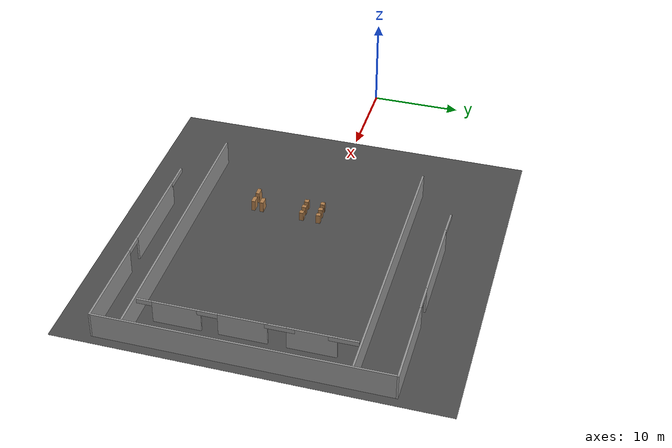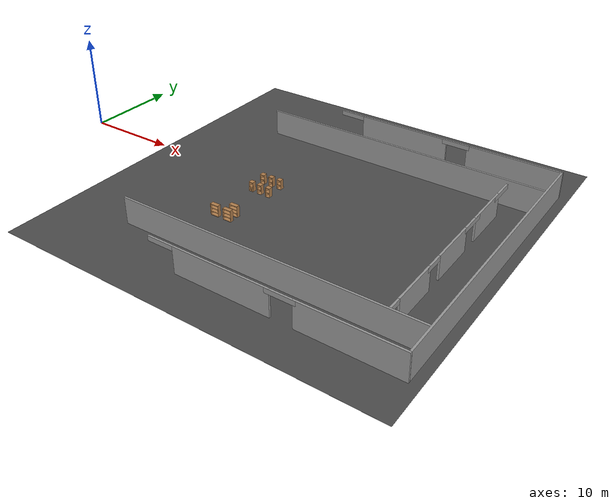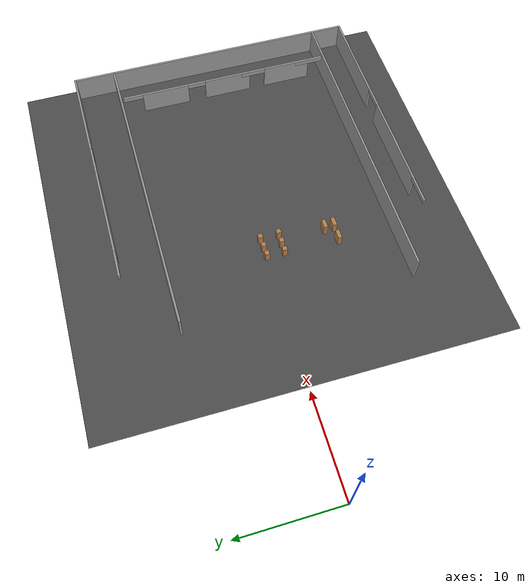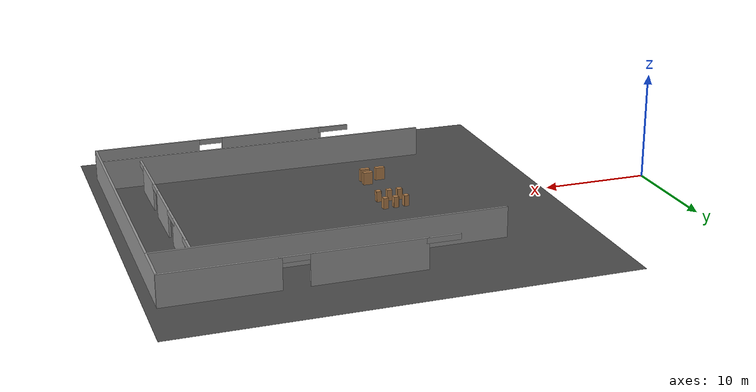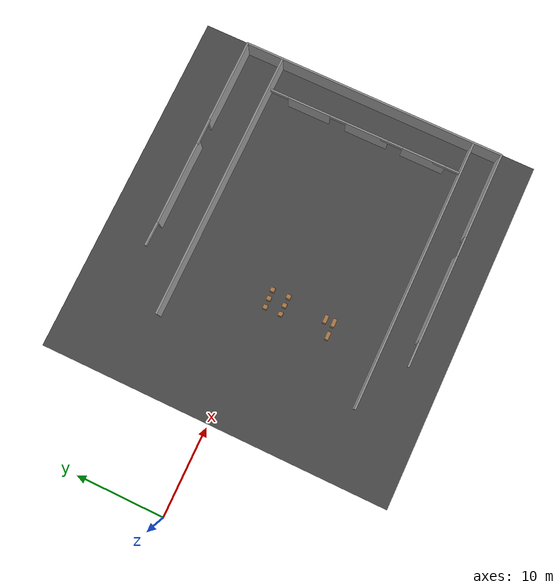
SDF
<sdf version="1.6">
 <world name="default">
  <model name="bookshelf_0">
   <static>1</static>
   <link name="link">
    <inertial><mass>1</mass></inertial>
    <collision name="back">
     <pose>0 0.005 0.6 0 -0 0</pose>
     <geometry><box><size>0.9 0.01 1.2</size></box></geometry>
    </collision>
    <visual name="visual1">
     <pose>0 0.005 0.6 0 -0 0</pose>
     <geometry><box><size>0.9 0.01 1.2</size></box></geometry>
     <material>
      <script><uri>file://media/materials/scripts/gazebo.material</uri><name>Gazebo/Wood</name></script>
     </material>
    </visual>
    <collision name="left_side">
     <pose>0.45 -0.195 0.6 0 -0 0</pose>
     <geometry><box><size>0.02 0.4 1.2</size></box></geometry>
    </collision>
    <visual name="visual2">
     <pose>0.45 -0.195 0.6 0 -0 0</pose>
     <geometry><box><size>0.02 0.4 1.2</size></box></geometry>
     <material>
      <script><uri>file://media/materials/scripts/gazebo.material</uri><name>Gazebo/Wood</name></script>
     </material>
    </visual>
    <collision name="right_side">
     <pose>-0.45 -0.195 0.6 0 -0 0</pose>
     <geometry><box><size>0.02 0.4 1.2</size></box></geometry>
    </collision>
    <visual name="visual3">
     <pose>-0.45 -0.195 0.6 0 -0 0</pose>
     <geometry><box><size>0.02 0.4 1.2</size></box></geometry>
     <material>
      <script><uri>file://media/materials/scripts/gazebo.material</uri><name>Gazebo/Wood</name></script>
     </material>
    </visual>
    <collision name="bottom">
     <pose>0 -0.195 0.03 0 -0 0</pose>
     <geometry><box><size>0.88 0.4 0.06</size></box></geometry>
    </collision>
    <visual name="visual4">
     <pose>0 -0.195 0.03 0 -0 0</pose>
     <geometry><box><size>0.88 0.4 0.06</size></box></geometry>
     <material>
      <script><uri>file://media/materials/scripts/gazebo.material</uri><name>Gazebo/Wood</name></script>
     </material>
    </visual>
    <collision name="top">
     <pose>0 -0.195 1.19 0 -0 0</pose>
     <geometry><box><size>0.88 0.4 0.02</size></box></geometry>
    </collision>
    <visual name="visual5">
     <pose>0 -0.195 1.19 0 -0 0</pose>
     <geometry><box><size>0.88 0.4 0.02</size></box></geometry>
     <material>
      <script><uri>file://media/materials/scripts/gazebo.material</uri><name>Gazebo/Wood</name></script>
     </material>
    </visual>
    <collision name="low_shelf">
     <pose>0 -0.195 0.43 0 -0 0</pose>
     <geometry><box><size>0.88 0.4 0.02</size></box></geometry>
    </collision>
    <visual name="visual6">
     <pose>0 -0.195 0.43 0 -0 0</pose>
     <geometry><box><size>0.88 0.4 0.02</size></box></geometry>
     <material>
      <script><uri>file://media/materials/scripts/gazebo.material</uri><name>Gazebo/Wood</name></script>
     </material>
    </visual>
    <collision name="high_shelf">
     <pose>0 -0.195 0.8 0 -0 0</pose>
     <geometry><box><size>0.88 0.4 0.02</size></box></geometry>
    </collision>
    <visual name="visual7">
     <pose>0 -0.195 0.8 0 -0 0</pose>
     <geometry><box><size>0.88 0.4 0.02</size></box></geometry>
     <material>
      <script><uri>file://media/materials/scripts/gazebo.material</uri><name>Gazebo/Wood</name></script>
     </material>
    </visual>
   </link>
   <pose>24 -7.29732 0 0 -0 0</pose>
  </model>
  <model name="bookshelf_4">
   <static>1</static>
   <link name="link">
    <inertial><mass>1</mass></inertial>
    <collision name="back">
     <pose>0 0.005 0.6 0 -0 0</pose>
     <geometry><box><size>0.9 0.01 1.2</size></box></geometry>
    </collision>
    <visual name="visual1">
     <pose>0 0.005 0.6 0 -0 0</pose>
     <geometry><box><size>0.9 0.01 1.2</size></box></geometry>
     <material>
      <script><uri>file://media/materials/scripts/gazebo.material</uri><name>Gazebo/Wood</name></script>
     </material>
    </visual>
    <collision name="left_side">
     <pose>0.45 -0.195 0.6 0 -0 0</pose>
     <geometry><box><size>0.02 0.4 1.2</size></box></geometry>
    </collision>
    <visual name="visual2">
     <pose>0.45 -0.195 0.6 0 -0 0</pose>
     <geometry><box><size>0.02 0.4 1.2</size></box></geometry>
     <material>
      <script><uri>file://media/materials/scripts/gazebo.material</uri><name>Gazebo/Wood</name></script>
     </material>
    </visual>
    <collision name="right_side">
     <pose>-0.45 -0.195 0.6 0 -0 0</pose>
     <geometry><box><size>0.02 0.4 1.2</size></box></geometry>
    </collision>
    <visual name="visual3">
     <pose>-0.45 -0.195 0.6 0 -0 0</pose>
     <geometry><box><size>0.02 0.4 1.2</size></box></geometry>
     <material>
      <script><uri>file://media/materials/scripts/gazebo.material</uri><name>Gazebo/Wood</name></script>
     </material>
    </visual>
    <collision name="bottom">
     <pose>0 -0.195 0.03 0 -0 0</pose>
     <geometry><box><size>0.88 0.4 0.06</size></box></geometry>
    </collision>
    <visual name="visual4">
     <pose>0 -0.195 0.03 0 -0 0</pose>
     <geometry><box><size>0.88 0.4 0.06</size></box></geometry>
     <material>
      <script><uri>file://media/materials/scripts/gazebo.material</uri><name>Gazebo/Wood</name></script>
     </material>
    </visual>
    <collision name="top">
     <pose>0 -0.195 1.19 0 -0 0</pose>
     <geometry><box><size>0.88 0.4 0.02</size></box></geometry>
    </collision>
    <visual name="visual5">
     <pose>0 -0.195 1.19 0 -0 0</pose>
     <geometry><box><size>0.88 0.4 0.02</size></box></geometry>
     <material>
      <script><uri>file://media/materials/scripts/gazebo.material</uri><name>Gazebo/Wood</name></script>
     </material>
    </visual>
    <collision name="low_shelf">
     <pose>0 -0.195 0.43 0 -0 0</pose>
     <geometry><box><size>0.88 0.4 0.02</size></box></geometry>
    </collision>
    <visual name="visual6">
     <pose>0 -0.195 0.43 0 -0 0</pose>
     <geometry><box><size>0.88 0.4 0.02</size></box></geometry>
     <material>
      <script><uri>file://media/materials/scripts/gazebo.material</uri><name>Gazebo/Wood</name></script>
     </material>
    </visual>
    <collision name="high_shelf">
     <pose>0 -0.195 0.8 0 -0 0</pose>
     <geometry><box><size>0.88 0.4 0.02</size></box></geometry>
    </collision>
    <visual name="visual7">
     <pose>0 -0.195 0.8 0 -0 0</pose>
     <geometry><box><size>0.88 0.4 0.02</size></box></geometry>
     <material>
      <script><uri>file://media/materials/scripts/gazebo.material</uri><name>Gazebo/Wood</name></script>
     </material>
    </visual>
   </link>
   <pose>25.4994 -7.31169 0 0 -0 0</pose>
  </model>
  <model name="bookshelf_7">
   <static>1</static>
   <link name="link">
    <inertial><mass>1</mass></inertial>
    <collision name="back">
     <pose>0 0.005 0.6 0 -0 0</pose>
     <geometry><box><size>0.9 0.01 1.2</size></box></geometry>
    </collision>
    <visual name="visual1">
     <pose>0 0.005 0.6 0 -0 0</pose>
     <geometry><box><size>0.9 0.01 1.2</size></box></geometry>
     <material>
      <script><uri>file://media/materials/scripts/gazebo.material</uri><name>Gazebo/Wood</name></script>
     </material>
    </visual>
    <collision name="left_side">
     <pose>0.45 -0.195 0.6 0 -0 0</pose>
     <geometry><box><size>0.02 0.4 1.2</size></box></geometry>
    </collision>
    <visual name="visual2">
     <pose>0.45 -0.195 0.6 0 -0 0</pose>
     <geometry><box><size>0.02 0.4 1.2</size></box></geometry>
     <material>
      <script><uri>file://media/materials/scripts/gazebo.material</uri><name>Gazebo/Wood</name></script>
     </material>
    </visual>
    <collision name="right_side">
     <pose>-0.45 -0.195 0.6 0 -0 0</pose>
     <geometry><box><size>0.02 0.4 1.2</size></box></geometry>
    </collision>
    <visual name="visual3">
     <pose>-0.45 -0.195 0.6 0 -0 0</pose>
     <geometry><box><size>0.02 0.4 1.2</size></box></geometry>
     <material>
      <script><uri>file://media/materials/scripts/gazebo.material</uri><name>Gazebo/Wood</name></script>
     </material>
    </visual>
    <collision name="bottom">
     <pose>0 -0.195 0.03 0 -0 0</pose>
     <geometry><box><size>0.88 0.4 0.06</size></box></geometry>
    </collision>
    <visual name="visual4">
     <pose>0 -0.195 0.03 0 -0 0</pose>
     <geometry><box><size>0.88 0.4 0.06</size></box></geometry>
     <material>
      <script><uri>file://media/materials/scripts/gazebo.material</uri><name>Gazebo/Wood</name></script>
     </material>
    </visual>
    <collision name="top">
     <pose>0 -0.195 1.19 0 -0 0</pose>
     <geometry><box><size>0.88 0.4 0.02</size></box></geometry>
    </collision>
    <visual name="visual5">
     <pose>0 -0.195 1.19 0 -0 0</pose>
     <geometry><box><size>0.88 0.4 0.02</size></box></geometry>
     <material>
      <script><uri>file://media/materials/scripts/gazebo.material</uri><name>Gazebo/Wood</name></script>
     </material>
    </visual>
    <collision name="low_shelf">
     <pose>0 -0.195 0.43 0 -0 0</pose>
     <geometry><box><size>0.88 0.4 0.02</size></box></geometry>
    </collision>
    <visual name="visual6">
     <pose>0 -0.195 0.43 0 -0 0</pose>
     <geometry><box><size>0.88 0.4 0.02</size></box></geometry>
     <material>
      <script><uri>file://media/materials/scripts/gazebo.material</uri><name>Gazebo/Wood</name></script>
     </material>
    </visual>
    <collision name="high_shelf">
     <pose>0 -0.195 0.8 0 -0 0</pose>
     <geometry><box><size>0.88 0.4 0.02</size></box></geometry>
    </collision>
    <visual name="visual7">
     <pose>0 -0.195 0.8 0 -0 0</pose>
     <geometry><box><size>0.88 0.4 0.02</size></box></geometry>
     <material>
      <script><uri>file://media/materials/scripts/gazebo.material</uri><name>Gazebo/Wood</name></script>
     </material>
    </visual>
   </link>
   <pose>25.5 -6.37044 0 0 -0 0</pose>
  </model>
  <model name="cabinet">
   <static>1</static>
   <link name="cabinet_bottom_plate">
    <inertial>
     <pose>0 0 -1 0 -0 0</pose>
     <inertia><ixx>2.05</ixx><ixy>0</ixy><ixz>0</ixz><iyy>2.05</iyy><iyz>0</iyz><izz>2.05</izz></inertia>
     <mass>25</mass>
    </inertial>
    <collision name="cabinet_bottom_plate_geom">
     <pose>0 0 0.01 0 -0 0</pose>
     <geometry><box><size>0.45 0.45 0.02</size></box></geometry>
    </collision>
    <visual name="cabinet_bottom_plate_geom_visual">
     <pose>0 0 0.01 0 -0 0</pose>
     <geometry><box><size>0.45 0.45 0.02</size></box></geometry>
     <material>
      <script><uri>file://media/materials/scripts/gazebo.material</uri><name>Gazebo/Wood</name></script>
     </material>
    </visual>
    <collision name="cabinet_bottom_plate_geom_cabinet_back_plate">
     <pose>0.235 0 0.51 0 -0 0</pose>
     <geometry><box><size>0.02 0.45 1.02</size></box></geometry>
    </collision>
    <visual name="cabinet_bottom_plate_geom_cabinet_back_plate_visual">
     <pose>0.235 0 0.51 0 -0 0</pose>
     <geometry><box><size>0.02 0.45 1.02</size></box></geometry>
     <material>
      <script><uri>file://media/materials/scripts/gazebo.material</uri><name>Gazebo/Wood</name></script>
     </material>
    </visual>
    <collision name="cabinet_bottom_plate_geom_cabinet_left_plate">
     <pose>0 0.235 0.51 0 -0 0</pose>
     <geometry><box><size>0.45 0.02 1.02</size></box></geometry>
    </collision>
    <visual name="cabinet_bottom_plate_geom_cabinet_left_plate_visual">
     <pose>0 0.235 0.51 0 -0 0</pose>
     <geometry><box><size>0.45 0.02 1.02</size></box></geometry>
     <material>
      <script><uri>file://media/materials/scripts/gazebo.material</uri><name>Gazebo/Wood</name></script>
     </material>
    </visual>
    <collision name="cabinet_bottom_plate_geom_cabinet_middle_plate">
     <pose>0 0 0.51 0 -0 0</pose>
     <geometry><box><size>0.45 0.45 0.02</size></box></geometry>
    </collision>
    <visual name="cabinet_bottom_plate_geom_cabinet_middle_plate_visual">
     <pose>0 0 0.51 0 -0 0</pose>
     <geometry><box><size>0.45 0.45 0.02</size></box></geometry>
     <material>
      <script><uri>file://media/materials/scripts/gazebo.material</uri><name>Gazebo/Wood</name></script>
     </material>
    </visual>
    <collision name="cabinet_bottom_plate_geom_cabinet_right_plate">
     <pose>0 -0.235 0.51 0 -0 0</pose>
     <geometry><box><size>0.45 0.02 1.02</size></box></geometry>
    </collision>
    <visual name="cabinet_bottom_plate_geom_cabinet_right_plate_visual">
     <pose>0 -0.235 0.51 0 -0 0</pose>
     <geometry><box><size>0.45 0.02 1.02</size></box></geometry>
     <material>
      <script><uri>file://media/materials/scripts/gazebo.material</uri><name>Gazebo/Wood</name></script>
     </material>
    </visual>
    <collision name="cabinet_bottom_plate_geom_cabinet_top_plate">
     <pose>0 0 1.01 0 -0 0</pose>
     <geometry><box><size>0.45 0.45 0.02</size></box></geometry>
    </collision>
    <visual name="cabinet_bottom_plate_geom_cabinet_top_plate_visual">
     <pose>0 0 1.01 0 -0 0</pose>
     <geometry><box><size>0.45 0.45 0.02</size></box></geometry>
     <material>
      <script><uri>file://media/materials/scripts/gazebo.material</uri><name>Gazebo/Wood</name></script>
     </material>
    </visual>
   </link>
   <pose>24 -2 0 0 -0 1.57</pose>
  </model>
  <model name="cabinet_0">
   <static>1</static>
   <link name="cabinet_bottom_plate">
    <inertial>
     <pose>0 0 -1 0 -0 0</pose>
     <inertia><ixx>2.05</ixx><ixy>0</ixy><ixz>0</ixz><iyy>2.05</iyy><iyz>0</iyz><izz>2.05</izz></inertia>
     <mass>25</mass>
    </inertial>
    <collision name="cabinet_bottom_plate_geom">
     <pose>0 0 0.01 0 -0 0</pose>
     <geometry><box><size>0.45 0.45 0.02</size></box></geometry>
    </collision>
    <visual name="cabinet_bottom_plate_geom_visual">
     <pose>0 0 0.01 0 -0 0</pose>
     <geometry><box><size>0.45 0.45 0.02</size></box></geometry>
     <material>
      <script><uri>file://media/materials/scripts/gazebo.material</uri><name>Gazebo/Wood</name></script>
     </material>
    </visual>
    <collision name="cabinet_bottom_plate_geom_cabinet_back_plate">
     <pose>0.235 0 0.51 0 -0 0</pose>
     <geometry><box><size>0.02 0.45 1.02</size></box></geometry>
    </collision>
    <visual name="cabinet_bottom_plate_geom_cabinet_back_plate_visual">
     <pose>0.235 0 0.51 0 -0 0</pose>
     <geometry><box><size>0.02 0.45 1.02</size></box></geometry>
     <material>
      <script><uri>file://media/materials/scripts/gazebo.material</uri><name>Gazebo/Wood</name></script>
     </material>
    </visual>
    <collision name="cabinet_bottom_plate_geom_cabinet_left_plate">
     <pose>0 0.235 0.51 0 -0 0</pose>
     <geometry><box><size>0.45 0.02 1.02</size></box></geometry>
    </collision>
    <visual name="cabinet_bottom_plate_geom_cabinet_left_plate_visual">
     <pose>0 0.235 0.51 0 -0 0</pose>
     <geometry><box><size>0.45 0.02 1.02</size></box></geometry>
     <material>
      <script><uri>file://media/materials/scripts/gazebo.material</uri><name>Gazebo/Wood</name></script>
     </material>
    </visual>
    <collision name="cabinet_bottom_plate_geom_cabinet_middle_plate">
     <pose>0 0 0.51 0 -0 0</pose>
     <geometry><box><size>0.45 0.45 0.02</size></box></geometry>
    </collision>
    <visual name="cabinet_bottom_plate_geom_cabinet_middle_plate_visual">
     <pose>0 0 0.51 0 -0 0</pose>
     <geometry><box><size>0.45 0.45 0.02</size></box></geometry>
     <material>
      <script><uri>file://media/materials/scripts/gazebo.material</uri><name>Gazebo/Wood</name></script>
     </material>
    </visual>
    <collision name="cabinet_bottom_plate_geom_cabinet_right_plate">
     <pose>0 -0.235 0.51 0 -0 0</pose>
     <geometry><box><size>0.45 0.02 1.02</size></box></geometry>
    </collision>
    <visual name="cabinet_bottom_plate_geom_cabinet_right_plate_visual">
     <pose>0 -0.235 0.51 0 -0 0</pose>
     <geometry><box><size>0.45 0.02 1.02</size></box></geometry>
     <material>
      <script><uri>file://media/materials/scripts/gazebo.material</uri><name>Gazebo/Wood</name></script>
     </material>
    </visual>
    <collision name="cabinet_bottom_plate_geom_cabinet_top_plate">
     <pose>0 0 1.01 0 -0 0</pose>
     <geometry><box><size>0.45 0.45 0.02</size></box></geometry>
    </collision>
    <visual name="cabinet_bottom_plate_geom_cabinet_top_plate_visual">
     <pose>0 0 1.01 0 -0 0</pose>
     <geometry><box><size>0.45 0.45 0.02</size></box></geometry>
     <material>
      <script><uri>file://media/materials/scripts/gazebo.material</uri><name>Gazebo/Wood</name></script>
     </material>
    </visual>
   </link>
   <pose>24 -0.211293 0 0 -0 1.63157</pose>
  </model>
  <model name="cabinet_1">
   <static>1</static>
   <link name="cabinet_bottom_plate">
    <inertial>
     <pose>0 0 -1 0 -0 0</pose>
     <inertia><ixx>2.05</ixx><ixy>0</ixy><ixz>0</ixz><iyy>2.05</iyy><iyz>0</iyz><izz>2.05</izz></inertia>
     <mass>25</mass>
    </inertial>
    <collision name="cabinet_bottom_plate_geom">
     <pose>0 0 0.01 0 -0 0</pose>
     <geometry><box><size>0.45 0.45 0.02</size></box></geometry>
    </collision>
    <visual name="cabinet_bottom_plate_geom_visual">
     <pose>0 0 0.01 0 -0 0</pose>
     <geometry><box><size>0.45 0.45 0.02</size></box></geometry>
     <material>
      <script><uri>file://media/materials/scripts/gazebo.material</uri><name>Gazebo/Wood</name></script>
     </material>
    </visual>
    <collision name="cabinet_bottom_plate_geom_cabinet_back_plate">
     <pose>0.235 0 0.51 0 -0 0</pose>
     <geometry><box><size>0.02 0.45 1.02</size></box></geometry>
    </collision>
    <visual name="cabinet_bottom_plate_geom_cabinet_back_plate_visual">
     <pose>0.235 0 0.51 0 -0 0</pose>
     <geometry><box><size>0.02 0.45 1.02</size></box></geometry>
     <material>
      <script><uri>file://media/materials/scripts/gazebo.material</uri><name>Gazebo/Wood</name></script>
     </material>
    </visual>
    <collision name="cabinet_bottom_plate_geom_cabinet_left_plate">
     <pose>0 0.235 0.51 0 -0 0</pose>
     <geometry><box><size>0.45 0.02 1.02</size></box></geometry>
    </collision>
    <visual name="cabinet_bottom_plate_geom_cabinet_left_plate_visual">
     <pose>0 0.235 0.51 0 -0 0</pose>
     <geometry><box><size>0.45 0.02 1.02</size></box></geometry>
     <material>
      <script><uri>file://media/materials/scripts/gazebo.material</uri><name>Gazebo/Wood</name></script>
     </material>
    </visual>
    <collision name="cabinet_bottom_plate_geom_cabinet_middle_plate">
     <pose>0 0 0.51 0 -0 0</pose>
     <geometry><box><size>0.45 0.45 0.02</size></box></geometry>
    </collision>
    <visual name="cabinet_bottom_plate_geom_cabinet_middle_plate_visual">
     <pose>0 0 0.51 0 -0 0</pose>
     <geometry><box><size>0.45 0.45 0.02</size></box></geometry>
     <material>
      <script><uri>file://media/materials/scripts/gazebo.material</uri><name>Gazebo/Wood</name></script>
     </material>
    </visual>
    <collision name="cabinet_bottom_plate_geom_cabinet_right_plate">
     <pose>0 -0.235 0.51 0 -0 0</pose>
     <geometry><box><size>0.45 0.02 1.02</size></box></geometry>
    </collision>
    <visual name="cabinet_bottom_plate_geom_cabinet_right_plate_visual">
     <pose>0 -0.235 0.51 0 -0 0</pose>
     <geometry><box><size>0.45 0.02 1.02</size></box></geometry>
     <material>
      <script><uri>file://media/materials/scripts/gazebo.material</uri><name>Gazebo/Wood</name></script>
     </material>
    </visual>
    <collision name="cabinet_bottom_plate_geom_cabinet_top_plate">
     <pose>0 0 1.01 0 -0 0</pose>
     <geometry><box><size>0.45 0.45 0.02</size></box></geometry>
    </collision>
    <visual name="cabinet_bottom_plate_geom_cabinet_top_plate_visual">
     <pose>0 0 1.01 0 -0 0</pose>
     <geometry><box><size>0.45 0.45 0.02</size></box></geometry>
     <material>
      <script><uri>file://media/materials/scripts/gazebo.material</uri><name>Gazebo/Wood</name></script>
     </material>
    </visual>
   </link>
   <pose>25 -0.169358 0 0 -0 1.58885</pose>
  </model>
  <model name="cabinet_2">
   <static>1</static>
   <link name="cabinet_bottom_plate">
    <inertial>
     <pose>0 0 -1 0 -0 0</pose>
     <inertia><ixx>2.05</ixx><ixy>0</ixy><ixz>0</ixz><iyy>2.05</iyy><iyz>0</iyz><izz>2.05</izz></inertia>
     <mass>25</mass>
    </inertial>
    <collision name="cabinet_bottom_plate_geom">
     <pose>0 0 0.01 0 -0 0</pose>
     <geometry><box><size>0.45 0.45 0.02</size></box></geometry>
    </collision>
    <visual name="cabinet_bottom_plate_geom_visual">
     <pose>0 0 0.01 0 -0 0</pose>
     <geometry><box><size>0.45 0.45 0.02</size></box></geometry>
     <material>
      <script><uri>file://media/materials/scripts/gazebo.material</uri><name>Gazebo/Wood</name></script>
     </material>
    </visual>
    <collision name="cabinet_bottom_plate_geom_cabinet_back_plate">
     <pose>0.235 0 0.51 0 -0 0</pose>
     <geometry><box><size>0.02 0.45 1.02</size></box></geometry>
    </collision>
    <visual name="cabinet_bottom_plate_geom_cabinet_back_plate_visual">
     <pose>0.235 0 0.51 0 -0 0</pose>
     <geometry><box><size>0.02 0.45 1.02</size></box></geometry>
     <material>
      <script><uri>file://media/materials/scripts/gazebo.material</uri><name>Gazebo/Wood</name></script>
     </material>
    </visual>
    <collision name="cabinet_bottom_plate_geom_cabinet_left_plate">
     <pose>0 0.235 0.51 0 -0 0</pose>
     <geometry><box><size>0.45 0.02 1.02</size></box></geometry>
    </collision>
    <visual name="cabinet_bottom_plate_geom_cabinet_left_plate_visual">
     <pose>0 0.235 0.51 0 -0 0</pose>
     <geometry><box><size>0.45 0.02 1.02</size></box></geometry>
     <material>
      <script><uri>file://media/materials/scripts/gazebo.material</uri><name>Gazebo/Wood</name></script>
     </material>
    </visual>
    <collision name="cabinet_bottom_plate_geom_cabinet_middle_plate">
     <pose>0 0 0.51 0 -0 0</pose>
     <geometry><box><size>0.45 0.45 0.02</size></box></geometry>
    </collision>
    <visual name="cabinet_bottom_plate_geom_cabinet_middle_plate_visual">
     <pose>0 0 0.51 0 -0 0</pose>
     <geometry><box><size>0.45 0.45 0.02</size></box></geometry>
     <material>
      <script><uri>file://media/materials/scripts/gazebo.material</uri><name>Gazebo/Wood</name></script>
     </material>
    </visual>
    <collision name="cabinet_bottom_plate_geom_cabinet_right_plate">
     <pose>0 -0.235 0.51 0 -0 0</pose>
     <geometry><box><size>0.45 0.02 1.02</size></box></geometry>
    </collision>
    <visual name="cabinet_bottom_plate_geom_cabinet_right_plate_visual">
     <pose>0 -0.235 0.51 0 -0 0</pose>
     <geometry><box><size>0.45 0.02 1.02</size></box></geometry>
     <material>
      <script><uri>file://media/materials/scripts/gazebo.material</uri><name>Gazebo/Wood</name></script>
     </material>
    </visual>
    <collision name="cabinet_bottom_plate_geom_cabinet_top_plate">
     <pose>0 0 1.01 0 -0 0</pose>
     <geometry><box><size>0.45 0.45 0.02</size></box></geometry>
    </collision>
    <visual name="cabinet_bottom_plate_geom_cabinet_top_plate_visual">
     <pose>0 0 1.01 0 -0 0</pose>
     <geometry><box><size>0.45 0.45 0.02</size></box></geometry>
     <material>
      <script><uri>file://media/materials/scripts/gazebo.material</uri><name>Gazebo/Wood</name></script>
     </material>
    </visual>
   </link>
   <pose>25 -2 0 0 -0 1.57</pose>
  </model>
  <model name="cabinet_3">
   <static>1</static>
   <link name="cabinet_bottom_plate">
    <inertial>
     <pose>0 0 -1 0 -0 0</pose>
     <inertia><ixx>2.05</ixx><ixy>0</ixy><ixz>0</ixz><iyy>2.05</iyy><iyz>0</iyz><izz>2.05</izz></inertia>
     <mass>25</mass>
    </inertial>
    <collision name="cabinet_bottom_plate_geom">
     <pose>0 0 0.01 0 -0 0</pose>
     <geometry><box><size>0.45 0.45 0.02</size></box></geometry>
    </collision>
    <visual name="cabinet_bottom_plate_geom_visual">
     <pose>0 0 0.01 0 -0 0</pose>
     <geometry><box><size>0.45 0.45 0.02</size></box></geometry>
     <material>
      <script><uri>file://media/materials/scripts/gazebo.material</uri><name>Gazebo/Wood</name></script>
     </material>
    </visual>
    <collision name="cabinet_bottom_plate_geom_cabinet_back_plate">
     <pose>0.235 0 0.51 0 -0 0</pose>
     <geometry><box><size>0.02 0.45 1.02</size></box></geometry>
    </collision>
    <visual name="cabinet_bottom_plate_geom_cabinet_back_plate_visual">
     <pose>0.235 0 0.51 0 -0 0</pose>
     <geometry><box><size>0.02 0.45 1.02</size></box></geometry>
     <material>
      <script><uri>file://media/materials/scripts/gazebo.material</uri><name>Gazebo/Wood</name></script>
     </material>
    </visual>
    <collision name="cabinet_bottom_plate_geom_cabinet_left_plate">
     <pose>0 0.235 0.51 0 -0 0</pose>
     <geometry><box><size>0.45 0.02 1.02</size></box></geometry>
    </collision>
    <visual name="cabinet_bottom_plate_geom_cabinet_left_plate_visual">
     <pose>0 0.235 0.51 0 -0 0</pose>
     <geometry><box><size>0.45 0.02 1.02</size></box></geometry>
     <material>
      <script><uri>file://media/materials/scripts/gazebo.material</uri><name>Gazebo/Wood</name></script>
     </material>
    </visual>
    <collision name="cabinet_bottom_plate_geom_cabinet_middle_plate">
     <pose>0 0 0.51 0 -0 0</pose>
     <geometry><box><size>0.45 0.45 0.02</size></box></geometry>
    </collision>
    <visual name="cabinet_bottom_plate_geom_cabinet_middle_plate_visual">
     <pose>0 0 0.51 0 -0 0</pose>
     <geometry><box><size>0.45 0.45 0.02</size></box></geometry>
     <material>
      <script><uri>file://media/materials/scripts/gazebo.material</uri><name>Gazebo/Wood</name></script>
     </material>
    </visual>
    <collision name="cabinet_bottom_plate_geom_cabinet_right_plate">
     <pose>0 -0.235 0.51 0 -0 0</pose>
     <geometry><box><size>0.45 0.02 1.02</size></box></geometry>
    </collision>
    <visual name="cabinet_bottom_plate_geom_cabinet_right_plate_visual">
     <pose>0 -0.235 0.51 0 -0 0</pose>
     <geometry><box><size>0.45 0.02 1.02</size></box></geometry>
     <material>
      <script><uri>file://media/materials/scripts/gazebo.material</uri><name>Gazebo/Wood</name></script>
     </material>
    </visual>
    <collision name="cabinet_bottom_plate_geom_cabinet_top_plate">
     <pose>0 0 1.01 0 -0 0</pose>
     <geometry><box><size>0.45 0.45 0.02</size></box></geometry>
    </collision>
    <visual name="cabinet_bottom_plate_geom_cabinet_top_plate_visual">
     <pose>0 0 1.01 0 -0 0</pose>
     <geometry><box><size>0.45 0.45 0.02</size></box></geometry>
     <material>
      <script><uri>file://media/materials/scripts/gazebo.material</uri><name>Gazebo/Wood</name></script>
     </material>
    </visual>
   </link>
   <pose>26 -0.139945 0 0 -0 1.58292</pose>
  </model>
  <model name="cabinet_4">
   <static>1</static>
   <link name="cabinet_bottom_plate">
    <inertial>
     <pose>0 0 -1 0 -0 0</pose>
     <inertia><ixx>2.05</ixx><ixy>0</ixy><ixz>0</ixz><iyy>2.05</iyy><iyz>0</iyz><izz>2.05</izz></inertia>
     <mass>25</mass>
    </inertial>
    <collision name="cabinet_bottom_plate_geom">
     <pose>0 0 0.01 0 -0 0</pose>
     <geometry><box><size>0.45 0.45 0.02</size></box></geometry>
    </collision>
    <visual name="cabinet_bottom_plate_geom_visual">
     <pose>0 0 0.01 0 -0 0</pose>
     <geometry><box><size>0.45 0.45 0.02</size></box></geometry>
     <material>
      <script><uri>file://media/materials/scripts/gazebo.material</uri><name>Gazebo/Wood</name></script>
     </material>
    </visual>
    <collision name="cabinet_bottom_plate_geom_cabinet_back_plate">
     <pose>0.235 0 0.51 0 -0 0</pose>
     <geometry><box><size>0.02 0.45 1.02</size></box></geometry>
    </collision>
    <visual name="cabinet_bottom_plate_geom_cabinet_back_plate_visual">
     <pose>0.235 0 0.51 0 -0 0</pose>
     <geometry><box><size>0.02 0.45 1.02</size></box></geometry>
     <material>
      <script><uri>file://media/materials/scripts/gazebo.material</uri><name>Gazebo/Wood</name></script>
     </material>
    </visual>
    <collision name="cabinet_bottom_plate_geom_cabinet_left_plate">
     <pose>0 0.235 0.51 0 -0 0</pose>
     <geometry><box><size>0.45 0.02 1.02</size></box></geometry>
    </collision>
    <visual name="cabinet_bottom_plate_geom_cabinet_left_plate_visual">
     <pose>0 0.235 0.51 0 -0 0</pose>
     <geometry><box><size>0.45 0.02 1.02</size></box></geometry>
     <material>
      <script><uri>file://media/materials/scripts/gazebo.material</uri><name>Gazebo/Wood</name></script>
     </material>
    </visual>
    <collision name="cabinet_bottom_plate_geom_cabinet_middle_plate">
     <pose>0 0 0.51 0 -0 0</pose>
     <geometry><box><size>0.45 0.45 0.02</size></box></geometry>
    </collision>
    <visual name="cabinet_bottom_plate_geom_cabinet_middle_plate_visual">
     <pose>0 0 0.51 0 -0 0</pose>
     <geometry><box><size>0.45 0.45 0.02</size></box></geometry>
     <material>
      <script><uri>file://media/materials/scripts/gazebo.material</uri><name>Gazebo/Wood</name></script>
     </material>
    </visual>
    <collision name="cabinet_bottom_plate_geom_cabinet_right_plate">
     <pose>0 -0.235 0.51 0 -0 0</pose>
     <geometry><box><size>0.45 0.02 1.02</size></box></geometry>
    </collision>
    <visual name="cabinet_bottom_plate_geom_cabinet_right_plate_visual">
     <pose>0 -0.235 0.51 0 -0 0</pose>
     <geometry><box><size>0.45 0.02 1.02</size></box></geometry>
     <material>
      <script><uri>file://media/materials/scripts/gazebo.material</uri><name>Gazebo/Wood</name></script>
     </material>
    </visual>
    <collision name="cabinet_bottom_plate_geom_cabinet_top_plate">
     <pose>0 0 1.01 0 -0 0</pose>
     <geometry><box><size>0.45 0.45 0.02</size></box></geometry>
    </collision>
    <visual name="cabinet_bottom_plate_geom_cabinet_top_plate_visual">
     <pose>0 0 1.01 0 -0 0</pose>
     <geometry><box><size>0.45 0.45 0.02</size></box></geometry>
     <material>
      <script><uri>file://media/materials/scripts/gazebo.material</uri><name>Gazebo/Wood</name></script>
     </material>
    </visual>
   </link>
   <pose>26 -2 0 0.032838 -0.000583 1.57</pose>
  </model>
  <model name="grey_wall_4">
   <static>1</static>
   <link name="link">
    <pose>0 0 1.4 0 -0 0</pose>
    <collision name="collision"><geometry><box><size>30 0.2 2.8</size></box></geometry></collision>
    <visual name="visual">
     <cast_shadows>0</cast_shadows>
     <geometry><box><size>30 0.2 2.8</size></box></geometry>
     <material>
      <script>
       <uri>model://grey_wall/materials/scripts</uri>
       <uri>model://grey_wall/materials/textures</uri>
       <name>vrc/grey_wall</name>
      </script>
     </material>
    </visual>
   </link>
   <pose>49.3131 -1.24144 0 0 -0 1.57</pose>
  </model>
  <model name="grey_wall_6">
   <static>1</static>
   <link name="link">
    <pose>0 0 1.4 0 -0 0</pose>
    <collision name="collision"><geometry><box><size>10 0.2 2.8</size></box></geometry></collision>
    <visual name="visual">
     <cast_shadows>0</cast_shadows>
     <geometry><box><size>10 0.2 2.8</size></box></geometry>
     <material>
      <script>
       <uri>model://grey_wall/materials/scripts</uri>
       <uri>model://grey_wall/materials/textures</uri>
       <name>vrc/grey_wall</name>
      </script>
     </material>
    </visual>
   </link>
   <pose>32.1677 -16.3247 0 0 -0 0</pose>
  </model>
  <model name="grey_wall_7">
   <static>1</static>
   <link name="link">
    <pose>0 0 1.4 0 -0 0</pose>
    <collision name="collision"><geometry><box><size>10 0.2 2.8</size></box></geometry></collision>
    <visual name="visual">
     <cast_shadows>0</cast_shadows>
     <geometry><box><size>10 0.2 2.8</size></box></geometry>
     <material>
      <script>
       <uri>model://grey_wall/materials/scripts</uri>
       <uri>model://grey_wall/materials/textures</uri>
       <name>vrc/grey_wall</name>
      </script>
     </material>
    </visual>
   </link>
   <pose>44.3898 -16.3247 0 0 -0 0</pose>
  </model>
  <model name="grey_wall_9">
   <static>1</static>
   <link name="link">
    <pose>0 0 1.4 0 -0 0</pose>
    <collision name="collision"><geometry><box><size>10 0.2 2.8</size></box></geometry></collision>
    <visual name="visual">
     <cast_shadows>0</cast_shadows>
     <geometry><box><size>10 0.2 2.8</size></box></geometry>
     <material>
      <script>
       <uri>model://grey_wall/materials/scripts</uri>
       <uri>model://grey_wall/materials/textures</uri>
       <name>vrc/grey_wall</name>
      </script>
     </material>
    </visual>
   </link>
   <pose>44.4313 13.8226 0 0 -0 0</pose>
  </model>
  <model name="grey_wall_10">
   <static>1</static>
   <link name="link">
    <pose>0 0 1.4 0 -0 0</pose>
    <collision name="collision"><geometry><box><size>10 0.2 2.8</size></box></geometry></collision>
    <visual name="visual">
     <cast_shadows>0</cast_shadows>
     <geometry><box><size>10 0.2 2.8</size></box></geometry>
     <material>
      <script>
       <uri>model://grey_wall/materials/scripts</uri>
       <uri>model://grey_wall/materials/textures</uri>
       <name>vrc/grey_wall</name>
      </script>
     </material>
    </visual>
   </link>
   <pose>32.1364 13.8033 0 0 -0 0</pose>
  </model>
  <model name="grey_wall_11">
   <static>1</static>
   <link name="link">
    <pose>0 0 1.4 0 -0 0</pose>
    <collision name="collision"><geometry><box><size>31 0.2 2.8</size></box></geometry></collision>
    <visual name="visual">
     <cast_shadows>0</cast_shadows>
     <geometry><box><size>31 0.2 2.8</size></box></geometry>
     <material>
      <script>
       <uri>model://grey_wall/materials/scripts</uri>
       <uri>model://grey_wall/materials/textures</uri>
       <name>vrc/grey_wall</name>
      </script>
     </material>
    </visual>
   </link>
   <pose>33.7083 -13.1062 0 0 -0 0</pose>
  </model>
  <model name="grey_wall_12">
   <static>1</static>
   <link name="link">
    <pose>0 0 1.4 0 -0 0</pose>
    <collision name="collision"><geometry><box><size>31 0.2 2.8</size></box></geometry></collision>
    <visual name="visual">
     <cast_shadows>0</cast_shadows>
     <geometry><box><size>31 0.2 2.8</size></box></geometry>
     <material>
      <script>
       <uri>model://grey_wall/materials/scripts</uri>
       <uri>model://grey_wall/materials/textures</uri>
       <name>vrc/grey_wall</name>
      </script>
     </material>
    </visual>
   </link>
   <pose>33.8961 9.58774 0 0 -0 0</pose>
  </model>
  <model name="asphalt_plane">
   <static>1</static>
   <link name="link">
    <collision name="collision"><geometry><box><size>40 40 0.01</size></box></geometry></collision>
    <visual name="visual">
     <cast_shadows>0</cast_shadows>
     <geometry><box><size>40 40 0.01</size></box></geometry>
     <material>
      <script>
       <uri>model://asphalt_plane/materials/scripts</uri>
       <uri>model://asphalt_plane/materials/textures</uri>
       <name>vrc/asphalt</name>
      </script>
     </material>
    </visual>
   </link>
   <pose>30.3856 -0.465765 0 0 -0 1.57</pose>
  </model>
  <model name="wood_cube_10cm">
   <link name="link">
    <pose>0 0 0.05 0 -0 0</pose>
    <inertial>
     <mass>0.5167</mass>
     <inertia>
      <ixx>0.000861167</ixx>
      <ixy>0</ixy>
      <ixz>0</ixz>
      <iyy>0.000861167</iyy>
      <iyz>0</iyz>
      <izz>0.000861167</izz>
     </inertia>
    </inertial>
    <collision name="collision">
     <geometry><box><size>0.3 0.3 0.3</size></box></geometry>
     <surface>
      <contact>
       <poissons_ratio>0.347</poissons_ratio>
       <elastic_modulus>8.8e+09</elastic_modulus>
       <ode><kp>100000</kp><kd>100</kd><max_vel>100</max_vel><min_depth>0.001</min_depth></ode>
      </contact>
      <friction>
       <torsional>
        <coefficient>1</coefficient>
        <use_patch_radius>0</use_patch_radius>
        <surface_radius>0.01</surface_radius>
       </torsional>
      </friction>
     </surface>
    </collision>
    <visual name="visual">
     <geometry><box><size>0.3 0.3 0.3</size></box></geometry>
     <material>
      <script><uri>file://media/materials/scripts/gazebo.material</uri><name>Gazebo/Wood</name></script>
     </material>
    </visual>
   </link>
   <pose>24.0305 -1.96816 0.168987 -1.64493 -1.57079 2.52935</pose>
  </model>
  <model name="grey_wall_16">
   <static>1</static>
   <link name="link">
    <pose>0 0 1.4 0 -0 0</pose>
    <collision name="collision"><geometry><box><size>5 0.2 2.5</size></box></geometry></collision>
    <visual name="visual">
     <cast_shadows>0</cast_shadows>
     <geometry><box><size>5 0.2 2.5</size></box></geometry>
     <material>
      <script>
       <uri>model://grey_wall/materials/scripts</uri>
       <uri>model://grey_wall/materials/textures</uri>
       <name>vrc/grey_wall</name>
      </script>
     </material>
    </visual>
   </link>
   <pose>45.6581 4.6935 -0.14828 0 0 -1.57</pose>
  </model>
  <model name="grey_wall_16_clone">
   <static>1</static>
   <link name="link">
    <pose>0 0 1.4 0 -0 0</pose>
    <collision name="collision"><geometry><box><size>5 0.2 2.5</size></box></geometry></collision>
    <visual name="visual">
     <cast_shadows>0</cast_shadows>
     <geometry><box><size>5 0.2 2.5</size></box></geometry>
     <material>
      <script>
       <uri>model://grey_wall/materials/scripts</uri>
       <uri>model://grey_wall/materials/textures</uri>
       <name>vrc/grey_wall</name>
      </script>
     </material>
    </visual>
   </link>
   <pose>45.6629 -2.19487 -0.14828 0 0 -1.57</pose>
  </model>
  <model name="grey_wall_16_clone_0">
   <static>1</static>
   <link name="link">
    <pose>0 0 1.4 0 -0 0</pose>
    <collision name="collision"><geometry><box><size>5 0.2 2.5</size></box></geometry></collision>
    <visual name="visual">
     <cast_shadows>0</cast_shadows>
     <geometry><box><size>5 0.2 2.5</size></box></geometry>
     <material>
      <script>
       <uri>model://grey_wall/materials/scripts</uri>
       <uri>model://grey_wall/materials/textures</uri>
       <name>vrc/grey_wall</name>
      </script>
     </material>
    </visual>
   </link>
   <pose>45.6629 -8.9041 -0.14828 0 0 -1.57</pose>
  </model>
  <model name="grey_wall_2_clone">
   <static>1</static>
   <link name="link">
    <pose>0 0 1.4 0 -0 0</pose>
    <collision name="collision"><geometry><box><size>3 0.2 0.5</size></box></geometry></collision>
    <visual name="visual">
     <cast_shadows>0</cast_shadows>
     <geometry><box><size>3 0.2 0.5</size></box></geometry>
     <material>
      <script>
       <uri>model://grey_wall/materials/scripts</uri>
       <uri>model://grey_wall/materials/textures</uri>
       <name>vrc/grey_wall</name>
      </script>
     </material>
    </visual>
   </link>
   <pose>45.6629 1.51569 0.8463 0 0 -1.57</pose>
  </model>
  <model name="grey_wall_2_clone_clone">
   <static>1</static>
   <link name="link">
    <pose>0 0 1.4 0 -0 0</pose>
    <collision name="collision"><geometry><box><size>3 0.2 0.5</size></box></geometry></collision>
    <visual name="visual">
     <cast_shadows>0</cast_shadows>
     <geometry><box><size>3 0.2 0.5</size></box></geometry>
     <material>
      <script>
       <uri>model://grey_wall/materials/scripts</uri>
       <uri>model://grey_wall/materials/textures</uri>
       <name>vrc/grey_wall</name>
      </script>
     </material>
    </visual>
   </link>
   <pose>45.6629 -5.30546 0.8463 0 0 -1.57</pose>
  </model>
  <model name="grey_wall_2_clone_clone_0">
   <static>1</static>
   <link name="link">
    <pose>0 0 1.4 0 -0 0</pose>
    <collision name="collision"><geometry><box><size>3 0.2 0.5</size></box></geometry></collision>
    <visual name="visual">
     <cast_shadows>0</cast_shadows>
     <geometry><box><size>3 0.2 0.5</size></box></geometry>
     <material>
      <script>
       <uri>model://grey_wall/materials/scripts</uri>
       <uri>model://grey_wall/materials/textures</uri>
       <name>vrc/grey_wall</name>
      </script>
     </material>
    </visual>
   </link>
   <pose>45.6629 7.8003 0.8463 0 0 -1.57</pose>
  </model>
  <model name="grey_wall_2_clone_clone_1">
   <static>1</static>
   <link name="link">
    <pose>0 0 1.4 0 -0 0</pose>
    <collision name="collision"><geometry><box><size>3 0.2 0.5</size></box></geometry></collision>
    <visual name="visual">
     <cast_shadows>0</cast_shadows>
     <geometry><box><size>3 0.2 0.5</size></box></geometry>
     <material>
      <script>
       <uri>model://grey_wall/materials/scripts</uri>
       <uri>model://grey_wall/materials/textures</uri>
       <name>vrc/grey_wall</name>
      </script>
     </material>
    </visual>
   </link>
   <pose>45.6629 -11.5132 0.8463 0 0 -1.57</pose>
  </model>
  <model name="grey_wall_2_clone_clone_2_clone_0">
   <static>1</static>
   <link name="link">
    <pose>0 0 1.4 0 -0 0</pose>
    <collision name="collision"><geometry><box><size>3 0.2 0.5</size></box></geometry></collision>
    <visual name="visual">
     <cast_shadows>0</cast_shadows>
     <geometry><box><size>3 0.2 0.5</size></box></geometry>
     <material>
      <script>
       <uri>model://grey_wall/materials/scripts</uri>
       <uri>model://grey_wall/materials/textures</uri>
       <name>vrc/grey_wall</name>
      </script>
     </material>
    </visual>
   </link>
   <pose>25.8899 13.8281 1.14748 0 0 -0.016381</pose>
  </model>
  <model name="grey_wall_2_clone_clone_0_clone">
   <static>1</static>
   <link name="link">
    <pose>0 0 1.4 0 -0 0</pose>
    <collision name="collision"><geometry><box><size>3 0.2 0.5</size></box></geometry></collision>
    <visual name="visual">
     <cast_shadows>0</cast_shadows>
     <geometry><box><size>3 0.2 0.5</size></box></geometry>
     <material>
      <script>
       <uri>model://grey_wall/materials/scripts</uri>
       <uri>model://grey_wall/materials/textures</uri>
       <name>vrc/grey_wall</name>
      </script>
     </material>
    </visual>
   </link>
   <pose>38.2053 13.8033 1.15942 0 0 -3.14</pose>
  </model>
  <model name="grey_wall_2_clone_clone_0_clone_0">
   <static>1</static>
   <link name="link">
    <pose>0 0 1.4 0 -0 0</pose>
    <collision name="collision"><geometry><box><size>3 0.2 0.5</size></box></geometry></collision>
    <visual name="visual">
     <cast_shadows>0</cast_shadows>
     <geometry><box><size>3 0.2 0.5</size></box></geometry>
     <material>
      <script>
       <uri>model://grey_wall/materials/scripts</uri>
       <uri>model://grey_wall/materials/textures</uri>
       <name>vrc/grey_wall</name>
      </script>
     </material>
    </visual>
   </link>
   <pose>25.8916 -16.3137 1.14277 0 0 -3.14</pose>
  </model>
  <model name="grey_wall_2_clone_clone_0_clone_0_clone">
   <static>1</static>
   <link name="link">
    <pose>0 0 1.4 0 -0 0</pose>
    <collision name="collision"><geometry><box><size>3 0.2 0.5</size></box></geometry></collision>
    <visual name="visual">
     <cast_shadows>0</cast_shadows>
     <geometry><box><size>3 0.2 0.5</size></box></geometry>
     <material>
      <script>
       <uri>model://grey_wall/materials/scripts</uri>
       <uri>model://grey_wall/materials/textures</uri>
       <name>vrc/grey_wall</name>
      </script>
     </material>
    </visual>
   </link>
   <pose>38.2047 -16.3339 1.14969 0 0 -3.14</pose>
  </model>
 </world>
</sdf>
